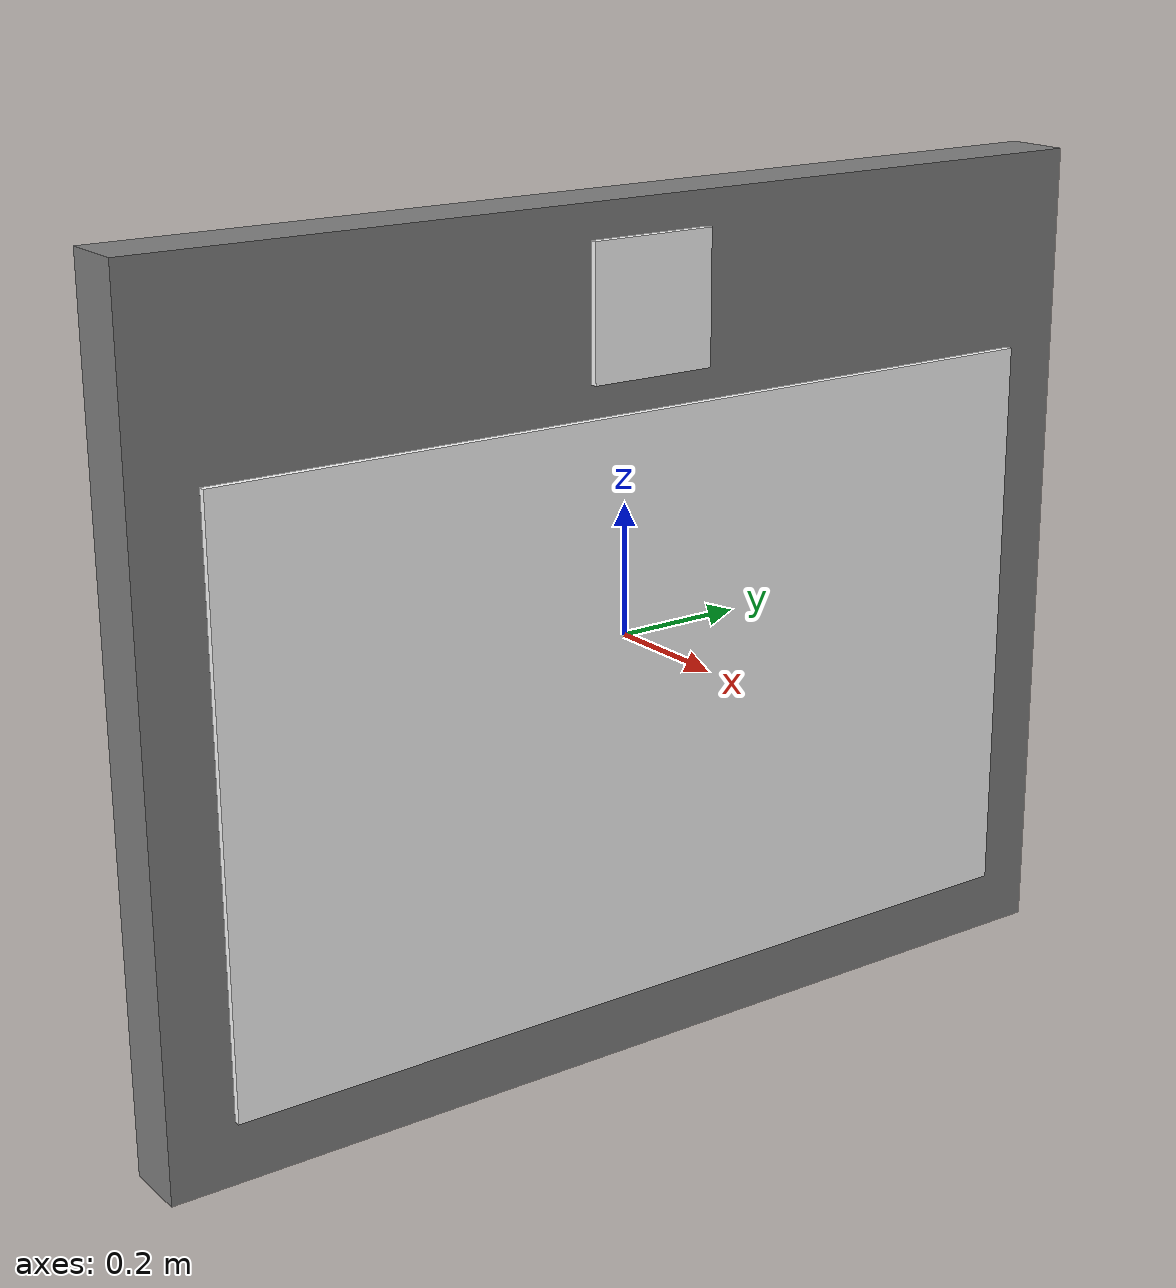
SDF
<?xml version="1.0" ?>
<sdf version="1.8">
  <model name="poster_board">
    <static>true</static>
    <link name="link">
      <!-- Çerçeve (Gri Renk) -->
      <visual name="frame">
        <geometry>
          <box>
            <size>0.1 1.6 1.3</size>
          </box>
        </geometry>
        <material>
          <ambient>0.5 0.5 0.5 1</ambient>
          <diffuse>0.5 0.5 0.5 1</diffuse>
        </material>
      </visual>

      <!-- Poster İçeriği -->
      <visual name="poster">
        <pose>0.06 0 -0.1 0 0 0</pose> <!-- Biraz aşağı kaydırdık -->
        <geometry>
          <box>
            <size>0.01 1.4 0.9</size> <!-- Yüksekliği azalttık -->
          </box>
        </geometry>
        <material>
          <ambient>1 1 1 1</ambient>
          <diffuse>1 1 1 1</diffuse>
          <pbr>
            <metal>
              <albedo_map>materials/textures/poster3.jpeg</albedo_map>
            </metal>
          </pbr>
        </material>
      </visual>

      <!-- ArUco Marker (Tepeye) -->
      <visual name="aruco_marker">
        <pose>0.065 0 0.5 0 0 0</pose> <!-- Çerçevenin üst kısmına yakın -->
        <geometry>
          <box>
            <size>0.01 0.2 0.2</size> <!-- 20cm x 20cm Marker -->
          </box>
        </geometry>
        <material>
          <ambient>1 1 1 1</ambient>
          <diffuse>1 1 1 1</diffuse>
          <pbr>
            <metal>
              <albedo_map>materials/textures/aruco_marker.png</albedo_map>
            </metal>
          </pbr>
        </material>
      </visual>

      <!-- Collision -->
       <collision name="collision">
        <geometry>
          <box>
            <size>0.1 1.6 1.3</size>
          </box>
        </geometry>
      </collision>
    </link>
  </model>
</sdf>
